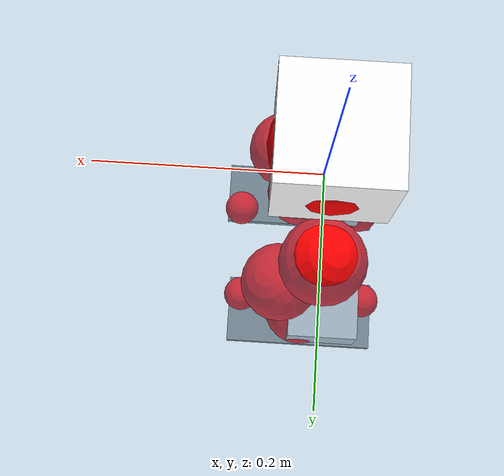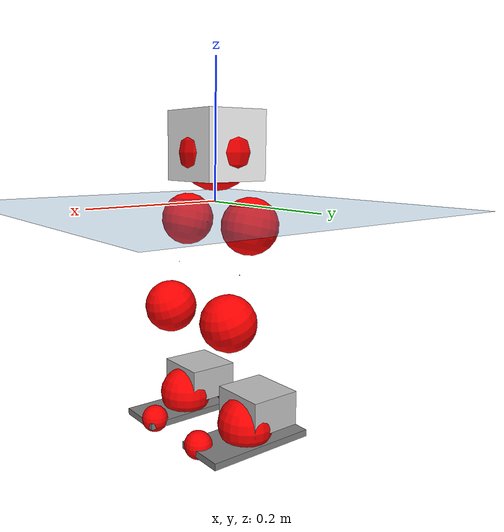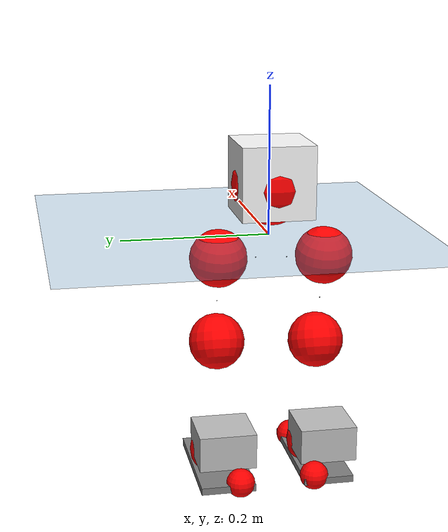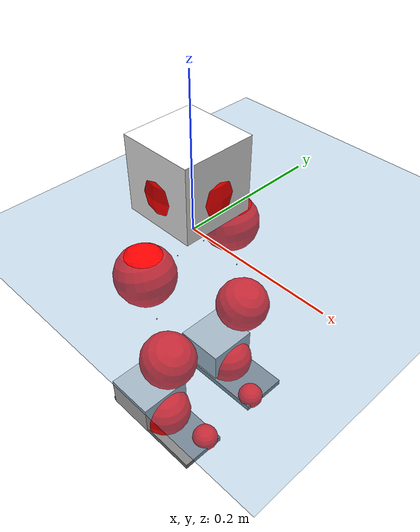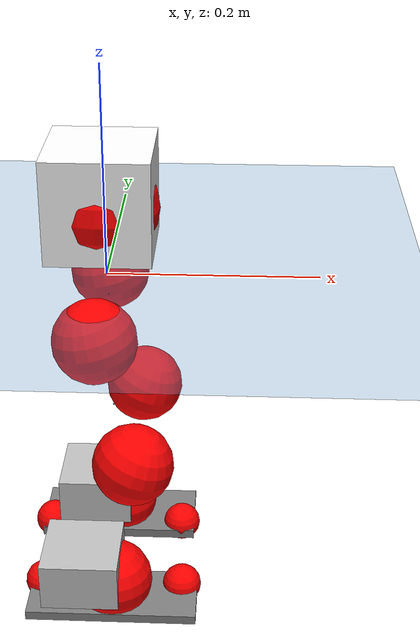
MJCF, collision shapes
<mujoco model="pi_12dof_release_v1">
  <compiler angle="radian" assetdir="assets" balanceinertia="true" inertiafromgeom="false"/>

  <option timestep="0.005" density="1.2" viscosity="2e-05"/>

  <size nkey="1"/>

  <visual>
    <quality shadowsize="8192"/>
    <map shadowclip="0.5"/>
  </visual>

  <default>
    <default class="/">
      <joint armature="0.01" damping="0.01" frictionloss="0.01"/>
      <geom contype="0" conaffinity="0" group="1" solref="-1000 -80"/>
      <site size="0.01 0.005 0.005" group="5"/>
      <general forcelimited="true" biastype="affine" gainprm="20" biasprm="0 -20 -0.5"/>
      <default class="foot">
        <geom size="0.0845 0.036 0.005" type="box" condim="6" group="4" priority="1" friction="0.9 0.2 0.2" solimp="0.015 1 0.005"/>
      </default>
      <default class="reward_collision_sphere">
        <geom group="5" rgba="1 0 0 1"/>
      </default>
    </default>
  </default>

  <asset>
    <texture type="skybox" colorspace="auto" name="//unnamed_texture_0" builtin="gradient" rgb1="0.95 0.95 0.95" rgb2="0.95 0.95 0.95" width="100" height="600"/>
    <texture type="2d" colorspace="auto" name="texplane" builtin="checker" rgb1="0.345 0.575 0.748" rgb2="0.345 0.575 0.748" markrgb="1 1 1" width="512" height="512"/>
    <material name="MatPlane" class="/" texture="texplane" texuniform="true" texrepeat="2 2" specular="0.9"/>
    <mesh name="baselink_1" class="/" file="baselink_1.STL"/>
    <mesh name="r_hip_pitch_link" class="/" file="r_hip_pitch_link.STL"/>
    <mesh name="r_hip_roll_link" class="/" file="r_hip_roll_link.STL"/>
    <mesh name="r_thigh_link" class="/" file="r_thigh_link.STL"/>
    <mesh name="r_calf_link" class="/" file="r_calf_link.STL"/>
    <mesh name="r_ankle_pitch_link" class="/" file="r_ankle_pitch_link.STL"/>
    <mesh name="r_ankle_roll_link" class="/" file="r_ankle_roll_link.STL"/>
    <mesh name="l_hip_pitch_link" class="/" file="l_hip_pitch_link.STL"/>
    <mesh name="l_hip_roll_link" class="/" file="l_hip_roll_link.STL"/>
    <mesh name="l_thigh_link" class="/" file="l_thigh_link.STL"/>
    <mesh name="l_calf_link" class="/" file="l_calf_link.STL"/>
    <mesh name="l_ankle_pitch_link" class="/" file="l_ankle_pitch_link.STL"/>
    <mesh name="l_ankle_roll_link" class="/" file="l_ankle_roll_link.STL"/>
  </asset>

  <worldbody>
    <geom name="floor" class="/" size="100 100 0.125" type="plane" group="0" material="MatPlane"/>
    <light name="toplight_shadow" class="/" pos="0 0 5" dir="0.0990148 0.0990148 -0.990148" type="directional" ambient="0.04 0.04 0.04" diffuse="0.55 0.55 0.55" specular="0.12 0.12 0.12"/>
    <light name="toplight_fill" class="/" pos="0 0 5" dir="0.0990148 0.0990148 -0.990148" type="directional" castshadow="false" ambient="0.04 0.04 0.04" diffuse="0.3 0.3 0.3" specular="0.08 0.08 0.08"/>
    <body name="trunk" pos="-0.00270099 -0.00215127 8.41372e-05" quat="0.999999 0.000483589 0.00055305 -0.00107849">
      <inertial pos="-0.000161186 0.000380007 0.0391183" quat="0.695164 0.00976607 0.00870783 0.718733" mass="2.00889" diaginertia="0.0126217 0.00559327 0.00389487"/>
      <joint name="//unnamed_joint_0" type="free"/>
      <geom name="//unnamed_geom_1" class="/" type="mesh" density="0" rgba="1 1 1 1" mesh="baselink_1"/>
      <geom name="//unnamed_geom_2" class="/" size="0.0490397 0.0490397 0.0490397" pos="0 0 0.0784967" type="box" rgba="1 1 1 1"/>
      <geom name="//unnamed_geom_3" class="reward_collision_sphere" size="0.0539437" pos="0 0 0.0686846"/>
      <site name="imu" class="/" pos="0.00277257 -0.00152388 0.00455078" size="0.00980794"/>
      <camera name="track" class="/" pos="0 -1.8201 0" quat="0.707107 0.707107 0 0" mode="trackcom"/>
      <camera name="ego_camera" class="/" pos="0.0788344 0 0.176617" quat="-0.5 -0.5 0.5 0.5"/>
      <body name="r_hip_pitch_link" pos="-0.0013903 -0.0218071 -0.0316215" quat="0.992099 1.8158e-05 -0.125449 0.00108694">
        <inertial pos="-0.00148773 -0.0526891 -0.000491369" quat="-0.0208405 0.706031 -0.028506 0.7073" mass="0.36417" diaginertia="0.000145715 6.11247e-05 7.92693e-05"/>
        <joint name="r_hip_pitch_joint" class="/" pos="0 0 0" axis="-0.00576266 -0.999983 -0.000370326" range="-1.74738 1.23659" armature="0.00981295" damping="0.0100368" frictionloss="0.0108968"/>
        <geom name="//unnamed_geom_4" class="/" type="mesh" density="0" rgba="0.75294 0.75294 0.75294 1" mesh="r_hip_pitch_link"/>
        <geom name="//unnamed_geom_5" class="/" size="0.000490397 0.000490397 0.000490397" type="box" rgba="0.75294 0.75294 0.75294 1"/>
        <body name="r_hip_roll_link" pos="-0.000357951 -0.0518302 0.000123838" quat="1 6.73801e-06 1.58175e-05 4.51957e-05">
          <inertial pos="0.00104346 -0.000220134 -0.0573971" quat="0.706422 -0.0788114 -0.0824392 0.698541" mass="0.370279" diaginertia="0.000428777 0.000171185 0.000116752"/>
          <joint name="r_hip_roll_joint" class="/" pos="0 0 0" axis="-1 0.000521674 -0.000374336" stiffness="0.00749568" range="-0.173017 0.512585" armature="0.00834837" damping="0" frictionloss="0.010078"/>
          <geom name="//unnamed_geom_6" class="/" type="mesh" density="0" rgba="0.75294 0.75294 0.75294 1" mesh="r_hip_roll_link"/>
          <geom name="//unnamed_geom_7" class="/" size="0.000490397 0.000490397 0.000490397" type="box" rgba="0.75294 0.75294 0.75294 1"/>
          <geom name="//unnamed_geom_8" class="reward_collision_sphere" size="0.0392318"/>
          <body name="r_thigh_link" pos="-0.00114817 -0.000329285 -0.0670825" quat="1 0.000518886 -0.000419328 -0.000672875">
            <inertial pos="0.00178771 0.0013967 -0.0488779" quat="0.729375 0.684074 0.00662106 0.00326578" mass="0.105179" diaginertia="0.000161502 5.97235e-05 5.13912e-05"/>
            <joint name="r_thigh_joint" class="/" pos="0 0 0" axis="0.00749829 0.00734319 -0.999945" range="-0.306229 0.63127" armature="0.0084565" damping="0.0049566" frictionloss="0.00965612"/>
            <geom name="//unnamed_geom_9" class="/" type="mesh" density="0" rgba="0.75294 0.75294 0.75294 1" mesh="r_thigh_link"/>
            <geom name="//unnamed_geom_10" class="/" size="0.000490397 0.000490397 0.000490397" type="box" rgba="0.75294 0.75294 0.75294 1"/>
            <body name="r_calf_link" pos="-0.00105612 0.000437169 -0.0696166" quat="0.947701 -0.000208352 0.319159 -3.0824e-05">
              <inertial pos="0.0021034 -0.00161643 -0.068582" quat="0.999987 -0.00421545 6.14704e-05 0.00273012" mass="0.810304" diaginertia="0.00468869 0.00227236 0.000159373"/>
              <joint name="r_calf_joint" class="/" pos="0 0 0" axis="-0.00236551 -0.999996 0.00137465" stiffness="0.0114088" range="-1.65758 0.593185" armature="0.0111648" damping="0" frictionloss="0.0110534"/>
              <geom name="//unnamed_geom_11" class="/" type="mesh" density="0" rgba="0.75294 0.75294 0.75294 1" mesh="r_calf_link"/>
              <geom name="//unnamed_geom_12" class="/" size="0.000490397 0.000490397 0.000490397" type="box" rgba="0.75294 0.75294 0.75294 1"/>
              <geom name="//unnamed_geom_13" class="reward_collision_sphere" size="0.0392318"/>
              <body name="r_ankle_pitch_link" pos="-0.00094942 0.00161676 -0.134593" quat="0.979936 -0.00013955 -0.19931 -0.001239">
                <inertial pos="0.00273977 0.000826533 0.000524197" quat="0.00535428 0.707926 -0.000516132 0.706266" mass="0.161377" diaginertia="0.000396184 0.000138479 0.000105854"/>
                <joint name="r_ankle_pitch_joint" class="/" pos="0 0 0" axis="0.011948 -0.999907 -0.00658963" range="-1.34915 0.550827" armature="0.0103286" damping="0.00759879" frictionloss="0.0088051"/>
                <geom name="//unnamed_geom_14" class="/" type="mesh" density="0" rgba="0.75294 0.75294 0.75294 1" mesh="r_ankle_pitch_link"/>
                <geom name="//unnamed_geom_15" class="/" size="0.038251 0.0392318 0.0245199" type="box" rgba="0.75294 0.75294 0.75294 1"/>
                <body name="r_ankle_roll_link" pos="0.0824044 0.00366129 2.88139e-06" quat="1 2.03611e-05 -0.000136198 -1.6038e-05">
                  <inertial pos="-0.0236983 9.45841e-05 -0.0134799" quat="0.561319 0.433116 0.432524 0.557005" mass="0.499627" diaginertia="0.00155099 0.000646224 0.000267735"/>
                  <joint name="r_ankle_roll_joint" class="/" pos="0 0 0" axis="-0.999935 0.00994839 0.00558237" range="-0.147719 0.0977407" armature="0.00916993" damping="0" frictionloss="0.00999659"/>
                  <geom name="//unnamed_geom_16" class="/" type="mesh" density="0" rgba="0.75294 0.75294 0.75294 1" mesh="r_ankle_roll_link"/>
                  <geom name="//unnamed_geom_17" class="/" type="mesh" rgba="0.75294 0.75294 0.75294 1" mesh="r_ankle_roll_link"/>
                  <geom name="right_foot" class="foot" size="0.085307 0.0342952 0.00468131" pos="-0.0536074 0 -0.0431732"/>
                  <geom name="//unnamed_geom_19" class="reward_collision_sphere" size="0.0392318" pos="-0.0525563 0 -0.0196242"/>
                  <geom name="//unnamed_geom_20" class="reward_collision_sphere" size="0.0196159" pos="0.0157669 0.018201 -0.0392483"/>
                  <geom name="//unnamed_geom_21" class="reward_collision_sphere" size="0.0196159" pos="-0.126135 0.018201 -0.0392483"/>
                  <site name="right_foot" class="foot" pos="-0.0536074 0 -0.0431732" size="0.00980794"/>
                </body>
              </body>
            </body>
          </body>
        </body>
      </body>
      <body name="l_hip_pitch_link" pos="0.00124876 0.0204003 -0.0305082" quat="0.992149 0.00075655 -0.125054 0.000644107">
        <inertial pos="0.00356902 0.050099 0.000391797" quat="-0.0388523 0.705533 0.0298671 0.706981" mass="0.364677" diaginertia="0.000165609 6.7867e-05 9.3214e-05"/>
        <joint name="l_hip_pitch_joint" class="/" pos="0 0 0" axis="-0.00408624 0.999989 0.00208364" range="-1.21816 1.76435" armature="0.0110104" damping="0" frictionloss="0.00989144"/>
        <geom name="//unnamed_geom_22" class="/" type="mesh" density="0" rgba="0.75294 0.75294 0.75294 1" mesh="l_hip_pitch_link"/>
        <geom name="//unnamed_geom_23" class="/" size="0.000490397 0.000490397 0.000490397" type="box" rgba="0.75294 0.75294 0.75294 1"/>
        <body name="l_hip_roll_link" pos="-0.00276332 0.0517286 0.00238208" quat="0.999999 -0.000409737 -0.000182976 0.00130143">
          <inertial pos="-0.00144479 0.000398454 -0.0588965" quat="0.691536 -0.0800148 -0.0863032 0.71269" mass="0.353798" diaginertia="0.000422443 0.000167584 0.000115933"/>
          <joint name="l_hip_roll_joint" class="/" pos="0 0 0" axis="-1 -0.000384379 7.575e-05" stiffness="0.00963465" range="-0.486574 0.116793" armature="0.0110106" damping="0" frictionloss="0.0101916"/>
          <geom name="//unnamed_geom_24" class="/" type="mesh" density="0" rgba="0.75294 0.75294 0.75294 1" mesh="l_hip_roll_link"/>
          <geom name="//unnamed_geom_25" class="/" size="0.000490397 0.000490397 0.000490397" type="box" rgba="0.75294 0.75294 0.75294 1"/>
          <geom name="//unnamed_geom_26" class="reward_collision_sphere" size="0.0392318"/>
          <body name="l_thigh_link" pos="-0.000391508 -0.000999364 -0.0670011" quat="1 -1.27043e-05 -0.000118179 -4.32581e-05">
            <inertial pos="0.000626849 -0.00161497 -0.0453486" quat="0.675424 0.73743 4.46137e-05 0.000238925" mass="0.10564" diaginertia="0.00016076 5.94121e-05 5.23924e-05"/>
            <joint name="l_thigh_joint" class="/" pos="0 0 0" axis="-0.00260846 0.00538087 -0.999982" range="-0.5984 0.318259" armature="0.00915658" damping="0.00116012" frictionloss="0.0101744"/>
            <geom name="//unnamed_geom_27" class="/" type="mesh" density="0" rgba="0.75294 0.75294 0.75294 1" mesh="l_thigh_link"/>
            <geom name="//unnamed_geom_28" class="/" size="0.000490397 0.000490397 0.000490397" type="box" rgba="0.75294 0.75294 0.75294 1"/>
            <body name="l_calf_link" pos="0.000119915 -0.00261754 -0.0666289" quat="0.947879 0.000997957 0.31863 -1.69849e-05">
              <inertial pos="0.000262301 0.00523568 -0.0693247" quat="0.999821 0.00620624 -0.00575036 0.0169486" mass="0.762468" diaginertia="0.0045708 0.00221929 0.000157856"/>
              <joint name="l_calf_joint" class="/" pos="0 0 0" axis="-0.00174983 0.99999 0.00419748" range="-0.628884 1.6371" armature="0.00854376" damping="0.00822983" frictionloss="0.0111199"/>
              <geom name="//unnamed_geom_29" class="/" type="mesh" density="0" rgba="0.75294 0.75294 0.75294 1" mesh="l_calf_link"/>
              <geom name="//unnamed_geom_30" class="/" size="0.000490397 0.000490397 0.000490397" type="box" rgba="0.75294 0.75294 0.75294 1"/>
              <geom name="//unnamed_geom_31" class="reward_collision_sphere" size="0.0392318"/>
              <body name="l_ankle_pitch_link" pos="0.00112059 0.000482211 -0.140271" quat="0.980024 -7.10615e-05 -0.198881 5.64393e-05">
                <inertial pos="0.0049025 -0.00173934 0.000448322" quat="-0.0027432 0.706163 0.00228283 0.70804" mass="0.165077" diaginertia="0.00039532 0.000139166 0.000105514"/>
                <joint name="l_ankle_pitch_joint" class="/" pos="0 0 0" axis="-0.00451933 0.99999 0.00012225" stiffness="0.00275217" range="-0.481654 1.30709" armature="0.00978563" damping="0.00677967" frictionloss="0.00991121"/>
                <geom name="//unnamed_geom_32" class="/" type="mesh" density="0" rgba="0.75294 0.75294 0.75294 1" mesh="l_ankle_pitch_link"/>
                <geom name="//unnamed_geom_33" class="/" size="0.038251 0.0392318 0.0245199" type="box" rgba="0.75294 0.75294 0.75294 1"/>
                <body name="l_ankle_roll_link" pos="0.0770718 0.00308282 -5.17167e-05" quat="1 0.00012542 -0.0003225 -0.000490112">
                  <inertial pos="-0.0229403 -0.00110172 -0.0131027" quat="0.559843 0.430447 0.434033 0.559381" mass="0.488269" diaginertia="0.00142491 0.000604667 0.000255218"/>
                  <joint name="l_ankle_roll_joint" class="/" pos="0 0 0" axis="-0.999905 0.000298713 0.0137712" range="-0.135842 0.150031" armature="0.00991874" damping="0.0144348" frictionloss="0.0093165"/>
                  <geom name="//unnamed_geom_34" class="/" type="mesh" density="0" rgba="0.75294 0.75294 0.75294 1" mesh="l_ankle_roll_link"/>
                  <geom name="//unnamed_geom_35" class="/" type="mesh" rgba="0.75294 0.75294 0.75294 1" mesh="l_ankle_roll_link"/>
                  <geom name="left_foot" class="foot" size="0.0827144 0.0371951 0.00484797" pos="-0.0536074 0 -0.0431732"/>
                  <geom name="//unnamed_geom_37" class="reward_collision_sphere" size="0.0392318" pos="-0.0525563 0 -0.0196242"/>
                  <geom name="//unnamed_geom_38" class="reward_collision_sphere" size="0.0196159" pos="0.0157669 -0.018201 -0.0392483"/>
                  <geom name="//unnamed_geom_39" class="reward_collision_sphere" size="0.0196159" pos="-0.126135 -0.018201 -0.0392483"/>
                  <site name="left_foot" class="foot" pos="-0.0536074 0 -0.0431732" size="0.00980794"/>
                </body>
              </body>
            </body>
          </body>
        </body>
      </body>
    </body>
  </worldbody>

  <contact>
    <pair class="/" geom1="floor" geom2="right_foot" name="//unnamed_contact_1"/>
    <pair class="/" geom1="floor" geom2="left_foot" name="//unnamed_contact_0"/>
  </contact>

  <actuator>
    <general name="r_hip_pitch_joint" class="/" joint="r_hip_pitch_joint" forcerange="-21.4571 21.4571" gainprm="19.2637" biasprm="0 -19.2637 -0.478773"/>
    <general name="r_hip_roll_joint" class="/" joint="r_hip_roll_joint" forcerange="-20.5478 20.5478" gainprm="19.2637" biasprm="0 -19.2637 -0.478773"/>
    <general name="r_thigh_joint" class="/" joint="r_thigh_joint" forcerange="-20.8723 20.8723" gainprm="19.2637" biasprm="0 -19.2637 -0.478773"/>
    <general name="r_calf_joint" class="/" joint="r_calf_joint" forcerange="-21.3679 21.3679" gainprm="19.2637" biasprm="0 -19.2637 -0.478773"/>
    <general name="r_ankle_pitch_joint" class="/" joint="r_ankle_pitch_joint" forcerange="-19.7444 19.7444" gainprm="19.2637" biasprm="0 -19.2637 -0.478773"/>
    <general name="r_ankle_roll_joint" class="/" joint="r_ankle_roll_joint" forcerange="-21.4118 21.4118" gainprm="19.2637" biasprm="0 -19.2637 -0.478773"/>
    <general name="l_hip_pitch_joint" class="/" joint="l_hip_pitch_joint" forcerange="-20.3006 20.3006" gainprm="19.2637" biasprm="0 -19.2637 -0.478773"/>
    <general name="l_hip_roll_joint" class="/" joint="l_hip_roll_joint" forcerange="-19.8889 19.8889" gainprm="19.2637" biasprm="0 -19.2637 -0.478773"/>
    <general name="l_thigh_joint" class="/" joint="l_thigh_joint" forcerange="-20.5305 20.5305" gainprm="19.2637" biasprm="0 -19.2637 -0.478773"/>
    <general name="l_calf_joint" class="/" joint="l_calf_joint" forcerange="-22.5332 22.5332" gainprm="19.2637" biasprm="0 -19.2637 -0.478773"/>
    <general name="l_ankle_pitch_joint" class="/" joint="l_ankle_pitch_joint" forcerange="-20.4024 20.4024" gainprm="19.2637" biasprm="0 -19.2637 -0.478773"/>
    <general name="l_ankle_roll_joint" class="/" joint="l_ankle_roll_joint" forcerange="-18.756 18.756" gainprm="19.2637" biasprm="0 -19.2637 -0.478773"/>
  </actuator>

  <sensor>
    <gyro site="imu" name="imu_angular_velocity"/>
    <velocimeter site="imu" name="imu_linear_velocity"/>
    <framelinvel objtype="site" objname="left_foot" name="left_foot_global_linear_velocity"/>
    <framelinvel objtype="site" objname="right_foot" name="right_foot_global_linear_velocity"/>
  </sensor>

  <keyframe>
    <key name="home" qpos="0 0 0.291 1 0 0 0 0.4 0 0 -0.8 0.4 0 -0.4 0 0 0.8 -0.4 0"/>
  </keyframe>
</mujoco>
